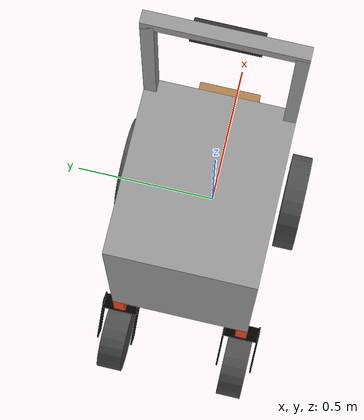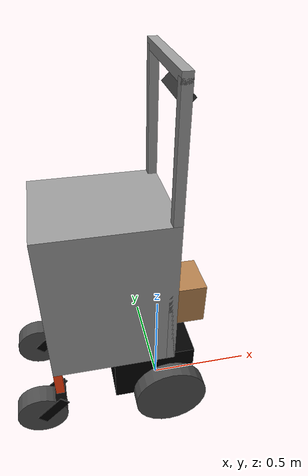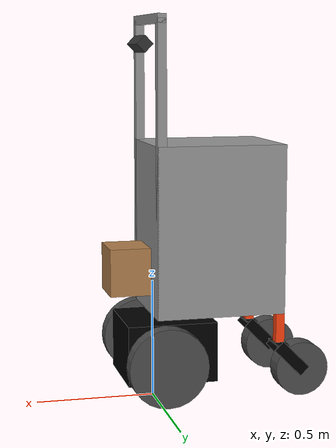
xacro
<?xml version="1.0"?>
<robot
     xmlns:xacro="http://www.ros.org/wiki/xacro"
     name="harlie">
    <!--xacro:include filename="$(find cwru_urdf)/sensors/sick_lms291_laser.urdf.xacro" /-->
    <xacro:property name="bodylen" value="0.5461" />
    <xacro:property name="originX" value="-0.2445" />
    <xacro:property name="bodywidth" value="0.4572" />
    <xacro:property name="originY" value="0.0" />
    <xacro:property name="bodyheight" value="0.7112" />
    <xacro:property name="originZ" value="0.7366" />
    <xacro:property name="batterylen" value="0.381" />
    <xacro:property name="batOX" value="-0.05" />
    <xacro:property name="batterywidth" value="0.3556" />
    <xacro:property name="batOY" value="0" />
    <xacro:property name="batteryheight" value="0.254" />
    <xacro:property name="batOZ" value="0.22" />
    <xacro:property name="wheeldrop" value="0.20" />
    <xacro:property name="tirediam" value="0.3302" />
    <xacro:property name="tirewidth" value="0.06985" />
    <xacro:property name="track" value=".56515" />
    <xacro:property name="M_PI" value="3.1415926535897931" />
    <xacro:property name="boschwidth" value="0.0381" />
    <xacro:property name="mastheight" value="1.2192" />
    <xacro:property name="casterdrop" value="0.125" />
    <xacro:property name="bracketwidth" value="0.1175" />
    <xacro:property name="bracketheight" value="0.16" />
    <xacro:property name="bracketthick" value="0.0508" />
    <xacro:property name="bracketangle" value="0.7854" />
    <xacro:property name="casterwidth" value="0.0826" />
    <xacro:property name="casterdiam" value="0.2286" />
    <xacro:property name="boschcolor" value=".6 .6 .6 1" />
    <xacro:property name="basecolor" value="1 .26 .06 1" />
    <xacro:property name="tirecolor" value=".3 .3 .3 1" />
    <xacro:property name="base_laser_x" value="0.1016" />
    <xacro:property name="base_laser_y" value="0.0" />
    <xacro:property name="base_laser_z" value="0.5588" />
    <xacro:macro name="default_inertial" params="mass">
        <inertial>
            <mass value="${mass}" />
            <inertia ixx="0.01" ixy="0.001" ixz="0.001"
         iyy="0.01" iyz="0.001"
         izz="0.01" />
        </inertial>
    </xacro:macro>
    <xacro:macro name="wheel" params="prefix reflect">
        <link name="${prefix}_wheel">
            <visual>
                <geometry>
                    <cylinder radius="${tirediam/2}" length="${tirewidth}"/>
                </geometry>
                <material name="${prefix}_tire">
                    <color rgba="${tirecolor}"/>
                </material>
            </visual>
            <collision>
                <geometry>
                    <cylinder radius="${tirediam/2}" length="${tirewidth}"/>
                </geometry>
            </collision>
            <xacro:default_inertial mass="1"/>
        </link>
        <joint name="${prefix}_wheel_joint" type="continuous">
            <axis xyz="0 0 1"/>
            <parent link="base_link"/>
            <child link="${prefix}_wheel"/>
            <origin xyz="0 ${reflect*track/2} ${wheeldrop}" rpy="0 ${M_PI/2} ${M_PI/2}"/>
            <limit effort="100" velocity="15" />
            <joint_properties damping="0.0" friction="0.0" />
        </joint>
    </xacro:macro>
    <xacro:macro name="caster" params="prefix reflect">
        <link name="castdrop_${prefix}">
            <visual>
                <geometry>
                    <box size="${boschwidth} ${boschwidth} ${casterdrop}"/>
                </geometry>
                <origin xyz="0 0 0" rpy="0 0 0"/>
                <material name="castdrop">
                    <color rgba="${basecolor}"/>
                </material>
            </visual>
            <collision>
                <geometry>
                    <box size="${boschwidth} ${boschwidth} ${casterdrop}"/>
                </geometry>
                <origin xyz="0 0 0" rpy="0 0 0"/>
            </collision>
            <xacro:default_inertial mass="1"/>
        </link>
        <joint name="cast2base_${prefix}" type="fixed">
            <parent link="base_link"/>
            <child link="castdrop_${prefix}"/>
            <origin xyz="${-bodylen/2+originX+boschwidth/2} ${reflect*bodywidth/2-reflect*boschwidth/2} ${-casterdrop/2-bodyheight/2+originZ}" />
        </joint>
        <link name="brackettop_${prefix}">
            <visual>
                <geometry>
                    <box size="${bracketwidth} ${bracketthick} .005"/>
                </geometry>
                <origin xyz="0 0 0" rpy="0 0 0"/>
                <material name="casttop">
                    <color rgba="0 0 0 1"/>
                </material>
            </visual>
            <collision>
                <geometry>
                    <box size="${bracketwidth} ${bracketthick} .005"/>
                </geometry>
                <origin xyz="0 0 0" rpy="0 0 0"/>
            </collision>
            <xacro:default_inertial mass="1"/>
        </link>
        <joint name="cast2bracket_${prefix}" type="continuous">
            <axis xyz="0 0 1"/>
            <parent link="castdrop_${prefix}"/>
            <child link="brackettop_${prefix}"/>
            <origin xyz="0 0 ${-casterdrop/2}" rpy="0 0 ${M_PI/2}"/>
            <joint_properties damping="0.0" friction="0.0" />
        </joint>
        <link name="bracketside1_${prefix}">
            <visual>
                <geometry>
                    <box size="${bracketthick} ${bracketheight} .005"/>
                </geometry>
                <origin xyz="0 0 0" rpy="${M_PI/2} ${-bracketangle} ${M_PI/2}"/>
                <material name="castside">
                    <color rgba="0 0 0 1"/>
                </material>
            </visual>
            <collision>
                <geometry>
                    <box size="${bracketthick} ${bracketheight} .005"/>
                </geometry>
                <origin xyz="0 0 0" rpy="${M_PI/2} ${-bracketangle} ${M_PI/2}"/>
            </collision>
            <xacro:default_inertial mass="1"/>
        </link>
        <joint name="brack2top1_${prefix}" type="fixed">
            <parent link="brackettop_${prefix}"/>
            <child link="bracketside1_${prefix}"/>
            <origin xyz="${bracketwidth/2} .04 -${bracketheight/2-.02}" rpy="0 0 0" />
        </joint>
        <link name="bracketside2_${prefix}">
            <visual>
                <geometry>
                    <box size="${bracketthick} ${bracketheight} .005"/>
                </geometry>
                <origin xyz="0 0 0" rpy="${M_PI/2} ${-bracketangle} ${M_PI/2}"/>
                <material name="castside">
                    <color rgba="0 0 0 1"/>
                </material>
            </visual>
            <collision>
                <geometry>
                    <box size="${bracketthick} ${bracketheight} .005"/>
                </geometry>
                <origin xyz="0 0 0" rpy="${M_PI/2} ${-bracketangle} ${M_PI/2}"/>
            </collision>
            <xacro:default_inertial mass="1"/>
        </link>
        <joint name="brack2top2_${prefix}" type="fixed">
            <parent link="brackettop_${prefix}"/>
            <child link="bracketside2_${prefix}"/>
            <origin xyz="${-bracketwidth/2} .04 -${bracketheight/2-.02}" rpy="0 0 0" />
        </joint>
        <link name="${prefix}_casterwheel">
            <visual>
                <geometry>
                    <cylinder radius="${casterdiam/2}" length="${casterwidth}"/>
                </geometry>
                <material name="${prefix}_caster">
                    <color rgba="${tirecolor}"/>
                </material>
            </visual>
            <collision>
                <geometry>
                    <cylinder radius="${casterdiam/2}" length="${casterwidth}"/>
                </geometry>
            </collision>
            <xacro:default_inertial mass="1"/>
        </link>
        <joint name="${prefix}_caster_joint" type="continuous">
            <axis xyz="0 0 1"/>
            <parent link="bracketside1_${prefix}"/>
            <child link="${prefix}_casterwheel"/>
            <origin xyz="${-casterwidth/2-.02} .053 -.053" rpy="0 ${M_PI/2} 0"/>
            <limit effort="100" velocity="15" />
            <joint_properties damping="0.0" friction="0.0" />
        </joint>
    </xacro:macro>
    <xacro:caster prefix="left" reflect="1"/>
    <xacro:caster prefix="right" reflect="-1"/>
    <link name="base_link">
        <visual>
            <geometry>
                <box size="${bodylen} ${bodywidth} ${bodyheight}"/>
            </geometry>
            <origin xyz="${originX} ${originY} ${originZ}" rpy="0 0 0"/>
            <material name="body">
                <color rgba="${boschcolor}"/>
            </material>
        </visual>
        <collision>
            <geometry>
                <box size="${bodylen} ${bodywidth} ${bodyheight}"/>
            </geometry>
            <origin xyz="${originX} ${originY} ${originZ}" rpy="0 0 0"/>
        </collision>
        <inertial>
            <mass value="158.75" />
            <inertia ixx="5.5" ixy="-0.0097199" ixz="1.293988"
         iyy="5.5" iyz="-0.0073"
         izz="3.7" />
        </inertial>
    </link>
    <link name="mastleft">
        <visual>
            <geometry>
                <box size="${boschwidth} ${boschwidth} ${mastheight}"/>
            </geometry>
            <origin xyz="0 0 0" rpy="0 0 0"/>
            <material name="mast">
                <color rgba="${boschcolor}"/>
            </material>
        </visual>
        <collision>
            <geometry>
                <box size="${boschwidth} ${boschwidth} ${mastheight}"/>
            </geometry>
            <origin xyz="0 0 0" rpy="0 0 0"/>
        </collision>
        <xacro:default_inertial mass="1"/>
    </link>
    <joint name="mastleft2base" type="fixed">
        <parent link="base_link"/>
        <child link="mastleft"/>
        <origin xyz="${bodylen/2+originX-boschwidth/2} ${bodywidth/2-boschwidth/2} ${mastheight/2-bodyheight/2+originZ}" />
    </joint>
    <link name="mastright">
        <visual>
            <geometry>
                <box size="${boschwidth} ${boschwidth} ${mastheight}"/>
            </geometry>
            <origin xyz="0 0 0" rpy="0 0 0"/>
            <material name="mast">
                <color rgba="${boschcolor}"/>
            </material>
        </visual>
        <collision>
            <geometry>
                <box size="${boschwidth} ${boschwidth} ${mastheight}"/>
            </geometry>
            <origin xyz="0 0 0" rpy="0 0 0"/>
        </collision>
        <xacro:default_inertial mass="1"/>
    </link>
    <joint name="mastright2base" type="fixed">
        <parent link="base_link"/>
        <child link="mastright"/>
        <origin xyz="${bodylen/2+originX-boschwidth/2} ${-bodywidth/2+boschwidth/2} ${mastheight/2-bodyheight/2+originZ}" />
    </joint>
    <link name="masttop">
        <visual>
            <geometry>
                <box size="${boschwidth} ${bodywidth} ${boschwidth}"/>
            </geometry>
            <origin xyz="0 0 0" rpy="0 0 0"/>
            <material name="mast">
                <color rgba="${boschcolor}"/>
            </material>
        </visual>
        <collision>
            <geometry>
                <box size="${boschwidth} ${bodywidth} ${boschwidth}"/>
            </geometry>
            <origin xyz="0 0 0" rpy="0 0 0"/>
        </collision>
        <xacro:default_inertial mass="1"/>
    </link>
    <joint name="masttoptobase" type="fixed">
        <parent link="base_link"/>
        <child link="masttop"/>
        <origin xyz="${bodylen/2+originX-boschwidth/2} 0 ${mastheight-bodyheight/2+originZ}" />
    </joint>
    <xacro:wheel prefix="left" reflect="1"/>
    <xacro:wheel prefix="right" reflect="-1"/>
    <link name="batterybox">
        <visual>
            <geometry>
                <box size="${batterylen} ${batterywidth} ${batteryheight}"/>
            </geometry>
            <origin xyz="0 0 0" rpy="0 0 0"/>
            <material name="batterybox">
                <color rgba="0 0 0 1"/>
            </material>
        </visual>
        <collision>
            <geometry>
                <box size="${batterylen} ${batterywidth} ${batteryheight}"/>
            </geometry>
            <origin xyz="0 0 0" rpy="0 0 0"/>
        </collision>
        <xacro:default_inertial mass="1"/>
    </link>
    <joint name="batterytobase" type="fixed">
        <parent link="base_link"/>
        <child link="batterybox"/>
        <origin xyz="${batOX} ${batOY} ${batOZ}" rpy="0 0 0"/>
    </joint>
<gazebo>
  <plugin name="differential_drive_controller" filename="libgazebo_ros_diff_drive.so">
    <alwaysOn>true</alwaysOn>
    <updateRate>100</updateRate>
    <leftJoint>right_wheel_joint</leftJoint>
    <rightJoint>left_wheel_joint</rightJoint>
    <wheelSeparation>${track}</wheelSeparation>
    <wheelDiameter>${tirediam}</wheelDiameter>
    <torque>200</torque>
    <commandTopic>cmd_vel</commandTopic>
    <odometryTopic>odom</odometryTopic>
    <odometryFrame>odom</odometryFrame>
    <robotBaseFrame>base_link</robotBaseFrame>
  </plugin>
</gazebo>

<!-- try adding a base_footprint -->

  <!-- example from Hokuyo Laser -->
  <link name="lidar_link">
      <collision>
          <origin xyz="0 0 0" rpy="0 0 0"/>
          <geometry>
              <!-- coarse LIDAR model; a simple box -->
              <box size="0.2 0.2 0.2"/>
          </geometry>
      </collision>

      <visual>
          <origin xyz="0 0 0" rpy="0 0 0" />
          <geometry>
              <box size="0.2 0.2 0.2" />
          </geometry>
          <material name="sick_grey">
              <color rgba="0.7 0.5 0.3 1.0"/>
          </material>
      </visual>

      <inertial>
          <mass value="2.0" />
          <origin xyz="0 0 0" rpy="0 0 0"/>
          <inertia ixx="0.01" ixy="0" ixz="0" iyy="0.01" iyz="0" izz="0.01" />
      </inertial>
  </link>
  <!--the above displays a box meant to imply Lidar-->

  <joint name="lidar_joint" type="fixed">
      <axis xyz="0 1 0" />
      <origin xyz="0.1 0 0.56" rpy="0 0 0"/>
      <parent link="base_link"/>
      <child link="lidar_link"/>
  </joint>
  <gazebo reference="lidar_link">
    <sensor type="gpu_ray" name="sick_lidar_sensor">
      <pose>0 0 0 0 0 0</pose>
      <visualize>false</visualize>
      <update_rate>40</update_rate>
      <ray>
        <scan>
          <horizontal>
            <samples>181</samples>
            <resolution>1</resolution>
            <min_angle>-1.570796</min_angle>
            <max_angle>1.570796</max_angle>
          </horizontal>
        </scan>
        <range>
          <min>0.10</min>
          <max>80.0</max>
          <resolution>0.01</resolution>
        </range>
        <noise>
          <type>gaussian</type>
          <mean>0.0</mean>
          <stddev>0.01</stddev>
        </noise>
      </ray>
      <plugin name="gazebo_ros_lidar_controller" filename="libgazebo_ros_gpu_laser.so">
                <topicName>/scan</topicName>
        <frameName>lidar_link</frameName>
      </plugin>
    </sensor>
  </gazebo>

  <!-- TRY ADDING a Kinect sensor: first the visual/collision/inertial box -->
    <link name="kinect_link">
      <collision>
          <origin xyz="0 0 0" rpy="0 0 0"/>
          <geometry>
              <!-- coarse model; a simple box -->
              <box size="0.05 0.2 0.05"/>
          </geometry>
      </collision>

      <visual>
          <origin xyz="0 0 0" rpy="0 0 0" />
          <geometry>
              <box size="0.05 0.2 0.05" />
          </geometry>
          <material name="kinect_gray">
              <color rgba="0.2 0.2 0.2 1.0"/>
          </material>
      </visual>

      <inertial>
          <mass value="0.1" />
          <origin xyz="0 0 0" rpy="0 0 0"/>
          <inertia ixx="0.001" ixy="0" ixz="0" iyy="0.001" iyz="0" izz="0.001" />
      </inertial>
  </link>
  <!--the above displays a box meant to imply Kinect-->
  <!--now set the position/orientation of the above box: -->
  <joint name="kinect_joint" type="fixed">
      <axis xyz="0 1 0" />
      <origin xyz="0.05 0 1.5" rpy="0 0.785 0"/>
      <parent link="base_link"/>
      <child link="kinect_link"/>
  </joint>

<!-- SENSOR: have to add a static transform publication to fix calibration of point clouds; see launch file -->
<gazebo reference="kinect_link">
    <sensor type="depth" name="openni_camera_camera">
        <always_on>1</always_on>
        <visualize>true</visualize>
        <camera>
            <horizontal_fov>1.047</horizontal_fov>
            <image>
                <width>640</width>
                <height>480</height>
                <format>R8G8B8</format>
            </image>
            <depth_camera>

            </depth_camera>
            <clip>
                <near>0.1</near>
                <far>100</far>
            </clip>
        </camera>
        <plugin name="camera_controller" filename="libgazebo_ros_openni_kinect.so">
            <alwaysOn>true</alwaysOn>
                <updateRate>10.0</updateRate>
                <cameraName>kinect</cameraName>
                <frameName>kinect_pc_frame</frameName>
            <imageTopicName>rgb/image_raw</imageTopicName>
            <depthImageTopicName>depth/image_raw</depthImageTopicName>
            <pointCloudTopicName>depth/points</pointCloudTopicName>
            <cameraInfoTopicName>rgb/camera_info</cameraInfoTopicName>
            <depthImageCameraInfoTopicName>depth/camera_info</depthImageCameraInfoTopicName>
            <pointCloudCutoff>0.4</pointCloudCutoff>
                <hackBaseline>0.07</hackBaseline>
                <distortionK1>0.0</distortionK1>
                <distortionK2>0.0</distortionK2>
                <distortionK3>0.0</distortionK3>
                <distortionT1>0.0</distortionT1>
                <distortionT2>0.0</distortionT2>
            <CxPrime>0.0</CxPrime>
            <Cx>0.0</Cx>
            <Cy>0.0</Cy>
            <focalLength>0.0</focalLength>
            </plugin>
    </sensor>
</gazebo>

</robot>
